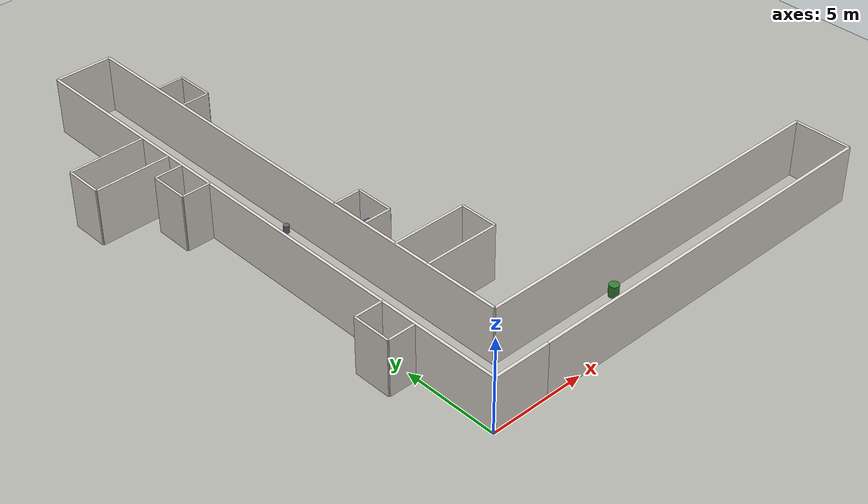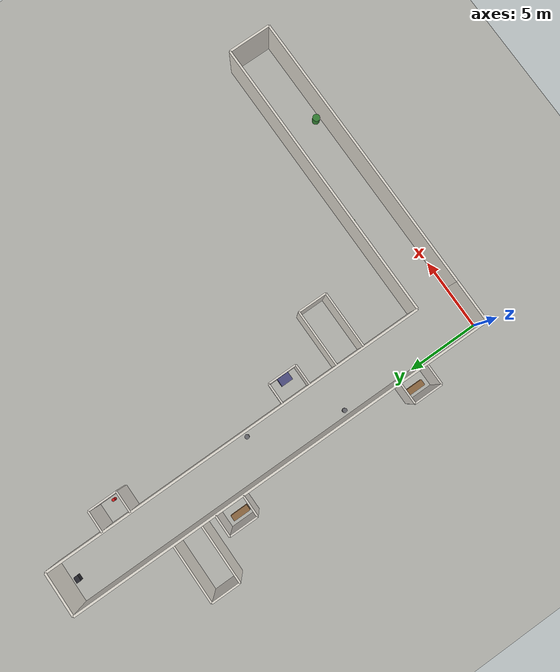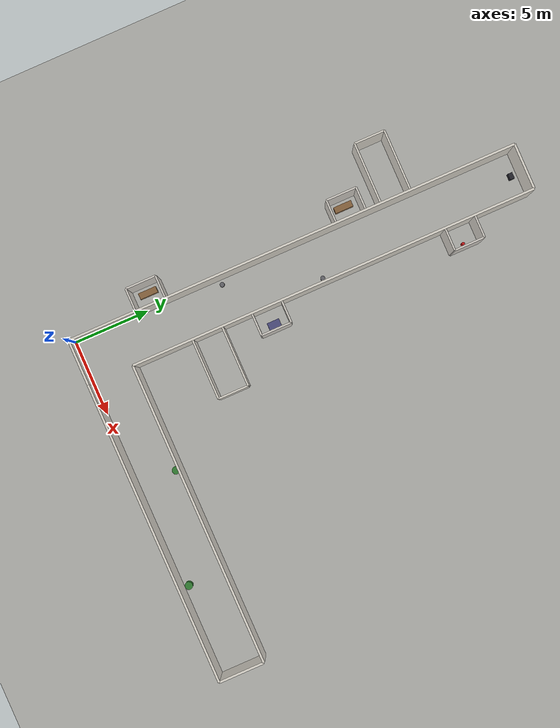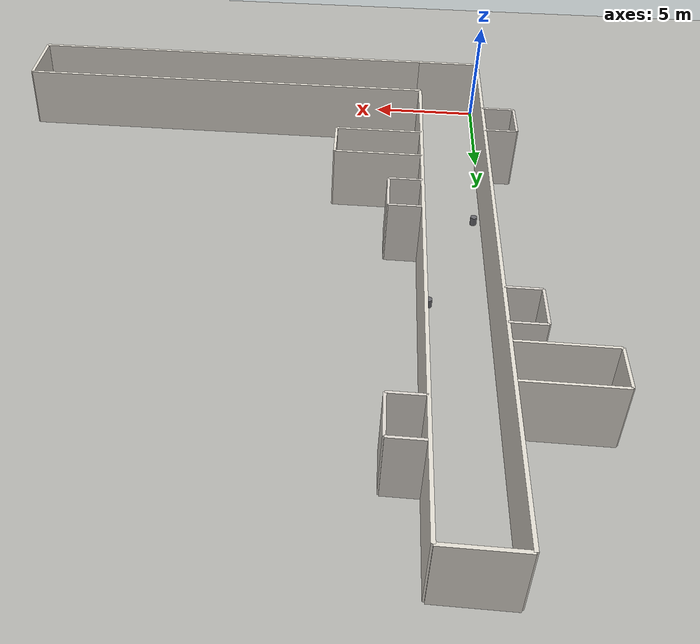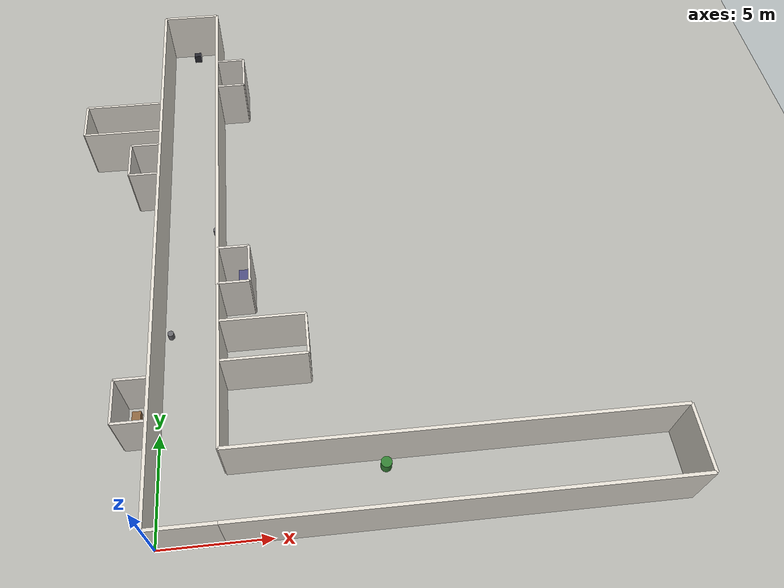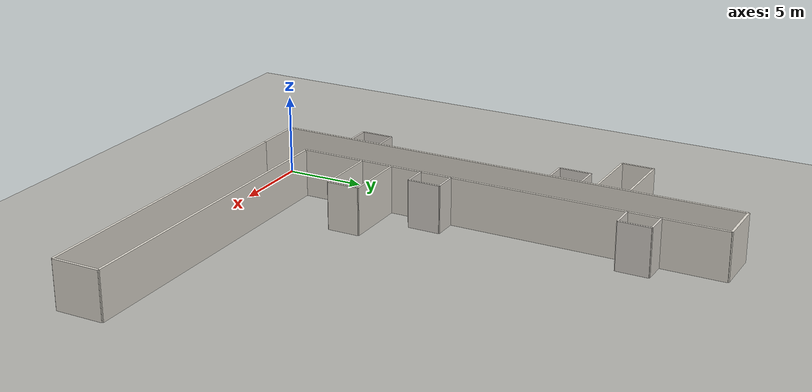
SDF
<?xml version="1.0" ?>
<!-- SPDX-License-Identifier: Apache-2.0 -->
<!-- L-shaped corridor for navigation testing.
     ~50m total length: 30m north leg + 20m east leg, 3m wide with alcoves. -->
<sdf version="1.9">
  <world name="corridor">
    <physics name="1ms" type="ignored">
      <max_step_size>0.001</max_step_size>
      <real_time_factor>1.0</real_time_factor>
    </physics>

    <plugin filename="gz-sim-physics-system" name="gz::sim::systems::Physics"/>
    <plugin filename="gz-sim-scene-broadcaster-system" name="gz::sim::systems::SceneBroadcaster"/>
    <plugin filename="gz-sim-sensors-system" name="gz::sim::systems::Sensors">
      <render_engine>ogre</render_engine>
    </plugin>
    <plugin filename="gz-sim-user-commands-system" name="gz::sim::systems::UserCommands"/>

    <light type="directional" name="sun">
      <cast_shadows>true</cast_shadows>
      <pose>0 0 10 0 0 0</pose>
      <diffuse>0.7 0.7 0.7 1</diffuse>
      <specular>0.2 0.2 0.2 1</specular>
      <direction>-0.5 0.1 -0.9</direction>
    </light>

    <!-- Ground plane (large enough for L-shape) -->
    <model name="ground_plane">
      <static>true</static>
      <link name="link">
        <collision name="collision">
          <geometry><plane><normal>0 0 1</normal><size>25 35</size></plane></geometry>
        </collision>
        <visual name="visual">
          <geometry><plane><normal>0 0 1</normal><size>25 35</size></plane></geometry>
          <material>
            <ambient>0.7 0.7 0.68 1</ambient>
            <diffuse>0.7 0.7 0.68 1</diffuse>
          </material>
        </visual>
      </link>
    </model>

    <!-- ═══════════════════════════════════════════════════════
         North leg: 30m long (y=0 to y=30), 3m wide (x=0 to x=3)
         ═══════════════════════════════════════════════════════ -->

    <!-- West wall of north leg (full length) -->
    <model name="north_leg_wall_west">
      <static>true</static>
      <pose>0 15 1.5 0 0 0</pose>
      <link name="link">
        <collision name="collision">
          <geometry><box><size>0.15 30 3.0</size></box></geometry>
        </collision>
        <visual name="visual">
          <geometry><box><size>0.15 30 3.0</size></box></geometry>
          <material><ambient>0.88 0.86 0.82 1</ambient><diffuse>0.88 0.86 0.82 1</diffuse></material>
        </visual>
      </link>
    </model>

    <!-- East wall of north leg (y=3 to y=30, stops at corner) -->
    <model name="north_leg_wall_east">
      <static>true</static>
      <pose>3 16.5 1.5 0 0 0</pose>
      <link name="link">
        <collision name="collision">
          <geometry><box><size>0.15 27 3.0</size></box></geometry>
        </collision>
        <visual name="visual">
          <geometry><box><size>0.15 27 3.0</size></box></geometry>
          <material><ambient>0.88 0.86 0.82 1</ambient><diffuse>0.88 0.86 0.82 1</diffuse></material>
        </visual>
      </link>
    </model>

    <!-- North cap wall (closes the north end) -->
    <model name="north_cap_wall">
      <static>true</static>
      <pose>1.5 30 1.5 0 0 0</pose>
      <link name="link">
        <collision name="collision">
          <geometry><box><size>3 0.15 3.0</size></box></geometry>
        </collision>
        <visual name="visual">
          <geometry><box><size>3 0.15 3.0</size></box></geometry>
          <material><ambient>0.88 0.86 0.82 1</ambient><diffuse>0.88 0.86 0.82 1</diffuse></material>
        </visual>
      </link>
    </model>

    <!-- South cap wall (closes south end of north leg) -->
    <model name="south_cap_wall">
      <static>true</static>
      <pose>1.5 0 1.5 0 0 0</pose>
      <link name="link">
        <collision name="collision">
          <geometry><box><size>3 0.15 3.0</size></box></geometry>
        </collision>
        <visual name="visual">
          <geometry><box><size>3 0.15 3.0</size></box></geometry>
          <material><ambient>0.88 0.86 0.82 1</ambient><diffuse>0.88 0.86 0.82 1</diffuse></material>
        </visual>
      </link>
    </model>

    <!-- South wall of east leg -->
    <model name="east_leg_wall_south">
      <static>true</static>
      <pose>13 0 1.5 0 0 0</pose>
      <link name="link">
        <collision name="collision">
          <geometry><box><size>20 0.15 3.0</size></box></geometry>
        </collision>
        <visual name="visual">
          <geometry><box><size>20 0.15 3.0</size></box></geometry>
          <material><ambient>0.88 0.86 0.82 1</ambient><diffuse>0.88 0.86 0.82 1</diffuse></material>
        </visual>
      </link>
    </model>

    <!-- North wall of east leg -->
    <model name="east_leg_wall_north">
      <static>true</static>
      <pose>13 3 1.5 0 0 0</pose>
      <link name="link">
        <collision name="collision">
          <geometry><box><size>20 0.15 3.0</size></box></geometry>
        </collision>
        <visual name="visual">
          <geometry><box><size>20 0.15 3.0</size></box></geometry>
          <material><ambient>0.88 0.86 0.82 1</ambient><diffuse>0.88 0.86 0.82 1</diffuse></material>
        </visual>
      </link>
    </model>

    <!-- East cap wall (closes east end) -->
    <model name="east_cap_wall">
      <static>true</static>
      <pose>23 1.5 1.5 0 0 0</pose>
      <link name="link">
        <collision name="collision">
          <geometry><box><size>0.15 3 3.0</size></box></geometry>
        </collision>
        <visual name="visual">
          <geometry><box><size>0.15 3 3.0</size></box></geometry>
          <material><ambient>0.88 0.86 0.82 1</ambient><diffuse>0.88 0.86 0.82 1</diffuse></material>
        </visual>
      </link>
    </model>

    <!-- ═══════════════════════════════════════════════════════
         Alcoves (1.5m deep, 2m wide) along the north leg
         ═══════════════════════════════════════════════════════ -->

    <!-- Alcove 1: West side at y=5, opens west (into west wall) -->
    <model name="alcove1_north_wall">
      <static>true</static>
      <pose>-0.75 6.5 1.5 0 0 0</pose>
      <link name="link">
        <collision name="collision">
          <geometry><box><size>1.5 0.12 3.0</size></box></geometry>
        </collision>
        <visual name="visual">
          <geometry><box><size>1.5 0.12 3.0</size></box></geometry>
          <material><ambient>0.85 0.83 0.8 1</ambient><diffuse>0.85 0.83 0.8 1</diffuse></material>
        </visual>
      </link>
    </model>

    <model name="alcove1_south_wall">
      <static>true</static>
      <pose>-0.75 4.5 1.5 0 0 0</pose>
      <link name="link">
        <collision name="collision">
          <geometry><box><size>1.5 0.12 3.0</size></box></geometry>
        </collision>
        <visual name="visual">
          <geometry><box><size>1.5 0.12 3.0</size></box></geometry>
          <material><ambient>0.85 0.83 0.8 1</ambient><diffuse>0.85 0.83 0.8 1</diffuse></material>
        </visual>
      </link>
    </model>

    <model name="alcove1_back_wall">
      <static>true</static>
      <pose>-1.5 5.5 1.5 0 0 0</pose>
      <link name="link">
        <collision name="collision">
          <geometry><box><size>0.12 2 3.0</size></box></geometry>
        </collision>
        <visual name="visual">
          <geometry><box><size>0.12 2 3.0</size></box></geometry>
          <material><ambient>0.85 0.83 0.8 1</ambient><diffuse>0.85 0.83 0.8 1</diffuse></material>
        </visual>
      </link>
    </model>

    <!-- Alcove 2: East side at y=12 -->
    <model name="alcove2_north_wall">
      <static>true</static>
      <pose>3.75 13 1.5 0 0 0</pose>
      <link name="link">
        <collision name="collision">
          <geometry><box><size>1.5 0.12 3.0</size></box></geometry>
        </collision>
        <visual name="visual">
          <geometry><box><size>1.5 0.12 3.0</size></box></geometry>
          <material><ambient>0.85 0.83 0.8 1</ambient><diffuse>0.85 0.83 0.8 1</diffuse></material>
        </visual>
      </link>
    </model>

    <model name="alcove2_south_wall">
      <static>true</static>
      <pose>3.75 11 1.5 0 0 0</pose>
      <link name="link">
        <collision name="collision">
          <geometry><box><size>1.5 0.12 3.0</size></box></geometry>
        </collision>
        <visual name="visual">
          <geometry><box><size>1.5 0.12 3.0</size></box></geometry>
          <material><ambient>0.85 0.83 0.8 1</ambient><diffuse>0.85 0.83 0.8 1</diffuse></material>
        </visual>
      </link>
    </model>

    <model name="alcove2_back_wall">
      <static>true</static>
      <pose>4.5 12 1.5 0 0 0</pose>
      <link name="link">
        <collision name="collision">
          <geometry><box><size>0.12 2 3.0</size></box></geometry>
        </collision>
        <visual name="visual">
          <geometry><box><size>0.12 2 3.0</size></box></geometry>
          <material><ambient>0.85 0.83 0.8 1</ambient><diffuse>0.85 0.83 0.8 1</diffuse></material>
        </visual>
      </link>
    </model>

    <!-- Alcove 3: West side at y=19 -->
    <model name="alcove3_north_wall">
      <static>true</static>
      <pose>-0.75 20 1.5 0 0 0</pose>
      <link name="link">
        <collision name="collision">
          <geometry><box><size>1.5 0.12 3.0</size></box></geometry>
        </collision>
        <visual name="visual">
          <geometry><box><size>1.5 0.12 3.0</size></box></geometry>
          <material><ambient>0.85 0.83 0.8 1</ambient><diffuse>0.85 0.83 0.8 1</diffuse></material>
        </visual>
      </link>
    </model>

    <model name="alcove3_south_wall">
      <static>true</static>
      <pose>-0.75 18 1.5 0 0 0</pose>
      <link name="link">
        <collision name="collision">
          <geometry><box><size>1.5 0.12 3.0</size></box></geometry>
        </collision>
        <visual name="visual">
          <geometry><box><size>1.5 0.12 3.0</size></box></geometry>
          <material><ambient>0.85 0.83 0.8 1</ambient><diffuse>0.85 0.83 0.8 1</diffuse></material>
        </visual>
      </link>
    </model>

    <model name="alcove3_back_wall">
      <static>true</static>
      <pose>-1.5 19 1.5 0 0 0</pose>
      <link name="link">
        <collision name="collision">
          <geometry><box><size>0.12 2 3.0</size></box></geometry>
        </collision>
        <visual name="visual">
          <geometry><box><size>0.12 2 3.0</size></box></geometry>
          <material><ambient>0.85 0.83 0.8 1</ambient><diffuse>0.85 0.83 0.8 1</diffuse></material>
        </visual>
      </link>
    </model>

    <!-- Alcove 4: East side at y=25 -->
    <model name="alcove4_north_wall">
      <static>true</static>
      <pose>3.75 26 1.5 0 0 0</pose>
      <link name="link">
        <collision name="collision">
          <geometry><box><size>1.5 0.12 3.0</size></box></geometry>
        </collision>
        <visual name="visual">
          <geometry><box><size>1.5 0.12 3.0</size></box></geometry>
          <material><ambient>0.85 0.83 0.8 1</ambient><diffuse>0.85 0.83 0.8 1</diffuse></material>
        </visual>
      </link>
    </model>

    <model name="alcove4_south_wall">
      <static>true</static>
      <pose>3.75 24 1.5 0 0 0</pose>
      <link name="link">
        <collision name="collision">
          <geometry><box><size>1.5 0.12 3.0</size></box></geometry>
        </collision>
        <visual name="visual">
          <geometry><box><size>1.5 0.12 3.0</size></box></geometry>
          <material><ambient>0.85 0.83 0.8 1</ambient><diffuse>0.85 0.83 0.8 1</diffuse></material>
        </visual>
      </link>
    </model>

    <model name="alcove4_back_wall">
      <static>true</static>
      <pose>4.5 25 1.5 0 0 0</pose>
      <link name="link">
        <collision name="collision">
          <geometry><box><size>0.12 2 3.0</size></box></geometry>
        </collision>
        <visual name="visual">
          <geometry><box><size>0.12 2 3.0</size></box></geometry>
          <material><ambient>0.85 0.83 0.8 1</ambient><diffuse>0.85 0.83 0.8 1</diffuse></material>
        </visual>
      </link>
    </model>

    <!-- ═══════════════════════════════════════════════════════
         Intersecting passages (side corridors off north leg)
         ═══════════════════════════════════════════════════════ -->

    <!-- Intersection 1: at y=8, opens east, 2m wide, 4m deep -->
    <model name="intersection1_north_wall">
      <static>true</static>
      <pose>5 9 1.5 0 0 0</pose>
      <link name="link">
        <collision name="collision">
          <geometry><box><size>4 0.12 3.0</size></box></geometry>
        </collision>
        <visual name="visual">
          <geometry><box><size>4 0.12 3.0</size></box></geometry>
          <material><ambient>0.88 0.86 0.82 1</ambient><diffuse>0.88 0.86 0.82 1</diffuse></material>
        </visual>
      </link>
    </model>

    <model name="intersection1_south_wall">
      <static>true</static>
      <pose>5 7 1.5 0 0 0</pose>
      <link name="link">
        <collision name="collision">
          <geometry><box><size>4 0.12 3.0</size></box></geometry>
        </collision>
        <visual name="visual">
          <geometry><box><size>4 0.12 3.0</size></box></geometry>
          <material><ambient>0.88 0.86 0.82 1</ambient><diffuse>0.88 0.86 0.82 1</diffuse></material>
        </visual>
      </link>
    </model>

    <model name="intersection1_end_wall">
      <static>true</static>
      <pose>7 8 1.5 0 0 0</pose>
      <link name="link">
        <collision name="collision">
          <geometry><box><size>0.12 2 3.0</size></box></geometry>
        </collision>
        <visual name="visual">
          <geometry><box><size>0.12 2 3.0</size></box></geometry>
          <material><ambient>0.88 0.86 0.82 1</ambient><diffuse>0.88 0.86 0.82 1</diffuse></material>
        </visual>
      </link>
    </model>

    <!-- Intersection 2: at y=22, opens west, 2m wide, 4m deep -->
    <model name="intersection2_north_wall">
      <static>true</static>
      <pose>-2 23 1.5 0 0 0</pose>
      <link name="link">
        <collision name="collision">
          <geometry><box><size>4 0.12 3.0</size></box></geometry>
        </collision>
        <visual name="visual">
          <geometry><box><size>4 0.12 3.0</size></box></geometry>
          <material><ambient>0.88 0.86 0.82 1</ambient><diffuse>0.88 0.86 0.82 1</diffuse></material>
        </visual>
      </link>
    </model>

    <model name="intersection2_south_wall">
      <static>true</static>
      <pose>-2 21 1.5 0 0 0</pose>
      <link name="link">
        <collision name="collision">
          <geometry><box><size>4 0.12 3.0</size></box></geometry>
        </collision>
        <visual name="visual">
          <geometry><box><size>4 0.12 3.0</size></box></geometry>
          <material><ambient>0.88 0.86 0.82 1</ambient><diffuse>0.88 0.86 0.82 1</diffuse></material>
        </visual>
      </link>
    </model>

    <model name="intersection2_end_wall">
      <static>true</static>
      <pose>-4 22 1.5 0 0 0</pose>
      <link name="link">
        <collision name="collision">
          <geometry><box><size>0.12 2 3.0</size></box></geometry>
        </collision>
        <visual name="visual">
          <geometry><box><size>0.12 2 3.0</size></box></geometry>
          <material><ambient>0.88 0.86 0.82 1</ambient><diffuse>0.88 0.86 0.82 1</diffuse></material>
        </visual>
      </link>
    </model>

    <!-- ═══════════════════════════════════════════════════════
         Furniture in alcoves and corridor
         ═══════════════════════════════════════════════════════ -->

    <!-- Bench in alcove 1 -->
    <model name="bench_1">
      <static>true</static>
      <pose>-1 5.5 0.225 0 0 1.5708</pose>
      <link name="link">
        <collision name="collision">
          <geometry><box><size>1.2 0.4 0.45</size></box></geometry>
        </collision>
        <visual name="visual">
          <geometry><box><size>1.2 0.4 0.45</size></box></geometry>
          <material><ambient>0.55 0.4 0.25 1</ambient><diffuse>0.55 0.4 0.25 1</diffuse></material>
        </visual>
      </link>
    </model>

    <!-- Vending machine in alcove 2 -->
    <model name="vending_machine">
      <static>true</static>
      <pose>4.2 12 0.9 0 0 -1.5708</pose>
      <link name="link">
        <collision name="collision">
          <geometry><box><size>0.8 0.6 1.8</size></box></geometry>
        </collision>
        <visual name="visual">
          <geometry><box><size>0.8 0.6 1.8</size></box></geometry>
          <material><ambient>0.3 0.3 0.5 1</ambient><diffuse>0.3 0.3 0.5 1</diffuse></material>
        </visual>
      </link>
    </model>

    <!-- Bench in alcove 3 -->
    <model name="bench_2">
      <static>true</static>
      <pose>-1 19 0.225 0 0 1.5708</pose>
      <link name="link">
        <collision name="collision">
          <geometry><box><size>1.2 0.4 0.45</size></box></geometry>
        </collision>
        <visual name="visual">
          <geometry><box><size>1.2 0.4 0.45</size></box></geometry>
          <material><ambient>0.55 0.4 0.25 1</ambient><diffuse>0.55 0.4 0.25 1</diffuse></material>
        </visual>
      </link>
    </model>

    <!-- Fire extinguisher (alcove 4) -->
    <model name="fire_extinguisher">
      <static>true</static>
      <pose>4.2 25 0.3 0 0 0</pose>
      <link name="link">
        <collision name="collision">
          <geometry><cylinder><radius>0.1</radius><length>0.6</length></cylinder></geometry>
        </collision>
        <visual name="visual">
          <geometry><cylinder><radius>0.1</radius><length>0.6</length></cylinder></geometry>
          <material><ambient>0.8 0.1 0.1 1</ambient><diffuse>0.8 0.1 0.1 1</diffuse></material>
        </visual>
      </link>
    </model>

    <!-- Trash bins along corridor -->
    <model name="trash_bin_1">
      <static>false</static>
      <pose>0.4 10 0.2 0 0 0</pose>
      <link name="link">
        <inertial>
          <mass>2.0</mass>
          <inertia><ixx>0.02</ixx><iyy>0.02</iyy><izz>0.01</izz></inertia>
        </inertial>
        <collision name="collision">
          <geometry><cylinder><radius>0.15</radius><length>0.4</length></cylinder></geometry>
        </collision>
        <visual name="visual">
          <geometry><cylinder><radius>0.15</radius><length>0.4</length></cylinder></geometry>
          <material><ambient>0.4 0.4 0.42 1</ambient><diffuse>0.4 0.4 0.42 1</diffuse></material>
        </visual>
      </link>
    </model>

    <model name="trash_bin_2">
      <static>false</static>
      <pose>2.6 16 0.2 0 0 0</pose>
      <link name="link">
        <inertial>
          <mass>2.0</mass>
          <inertia><ixx>0.02</ixx><iyy>0.02</iyy><izz>0.01</izz></inertia>
        </inertial>
        <collision name="collision">
          <geometry><cylinder><radius>0.15</radius><length>0.4</length></cylinder></geometry>
        </collision>
        <visual name="visual">
          <geometry><cylinder><radius>0.15</radius><length>0.4</length></cylinder></geometry>
          <material><ambient>0.4 0.4 0.42 1</ambient><diffuse>0.4 0.4 0.42 1</diffuse></material>
        </visual>
      </link>
    </model>

    <!-- Planter (east leg corridor) -->
    <model name="planter_1">
      <static>true</static>
      <pose>10 2.6 0.3 0 0 0</pose>
      <link name="link">
        <collision name="collision">
          <geometry><cylinder><radius>0.25</radius><length>0.6</length></cylinder></geometry>
        </collision>
        <visual name="visual">
          <geometry><cylinder><radius>0.25</radius><length>0.6</length></cylinder></geometry>
          <material><ambient>0.2 0.5 0.2 1</ambient><diffuse>0.2 0.5 0.2 1</diffuse></material>
        </visual>
      </link>
    </model>

    <model name="planter_2">
      <static>true</static>
      <pose>17 0.4 0.3 0 0 0</pose>
      <link name="link">
        <collision name="collision">
          <geometry><cylinder><radius>0.25</radius><length>0.6</length></cylinder></geometry>
        </collision>
        <visual name="visual">
          <geometry><cylinder><radius>0.25</radius><length>0.6</length></cylinder></geometry>
          <material><ambient>0.2 0.5 0.2 1</ambient><diffuse>0.2 0.5 0.2 1</diffuse></material>
        </visual>
      </link>
    </model>

    <!-- Charging dock (north end of corridor) -->
    <include>
      <uri>model://charging_dock</uri>
      <name>charging_dock_1</name>
      <pose>1.5 29.5 0 0 0 3.14159</pose>
    </include>

  </world>
</sdf>

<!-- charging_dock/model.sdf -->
<!-- SPDX-License-Identifier: Apache-2.0 -->
<sdf version="1.9">
  <model name="charging_dock">
    <static>true</static>

    <!-- Dock body -->
    <link name="dock_body">
      <pose>0 0 0.25 0 0 0</pose>
      <collision name="collision">
        <geometry><box><size>0.4 0.3 0.5</size></box></geometry>
      </collision>
      <visual name="body_visual">
        <geometry><box><size>0.4 0.3 0.5</size></box></geometry>
        <material>
          <ambient>0.15 0.15 0.18 1</ambient>
          <diffuse>0.15 0.15 0.18 1</diffuse>
          <specular>0.3 0.3 0.3 1</specular>
        </material>
      </visual>
    </link>

    <!-- AprilTag marker face (front-facing, z=0.35m height) -->
    <link name="apriltag_marker">
      <pose>0 -0.151 0.35 0 0 0</pose>
      <visual name="tag_visual">
        <geometry><box><size>0.16 0.001 0.16</size></box></geometry>
        <material>
          <ambient>1.0 1.0 1.0 1</ambient>
          <diffuse>1.0 1.0 1.0 1</diffuse>
        </material>
      </visual>
    </link>

    <!-- AprilTag black border (slightly larger) -->
    <link name="apriltag_border">
      <pose>0 -0.1505 0.35 0 0 0</pose>
      <visual name="border_visual">
        <geometry><box><size>0.20 0.001 0.20</size></box></geometry>
        <material>
          <ambient>0.0 0.0 0.0 1</ambient>
          <diffuse>0.0 0.0 0.0 1</diffuse>
        </material>
      </visual>
    </link>

    <!-- Pogo pin contact plate (bottom front) -->
    <link name="contact_plate">
      <pose>0 -0.14 0.06 0 0 0</pose>
      <collision name="collision">
        <geometry><box><size>0.12 0.02 0.08</size></box></geometry>
      </collision>
      <visual name="contact_visual">
        <geometry><box><size>0.12 0.02 0.08</size></box></geometry>
        <material>
          <ambient>0.8 0.7 0.2 1</ambient>
          <diffuse>0.8 0.7 0.2 1</diffuse>
          <specular>0.9 0.9 0.5 1</specular>
        </material>
      </visual>
    </link>

    <!-- LED indicator left (green) -->
    <link name="led_green">
      <pose>-0.15 -0.151 0.46 0 0 0</pose>
      <visual name="led_visual">
        <geometry><sphere><radius>0.01</radius></sphere></geometry>
        <material>
          <ambient>0.0 0.8 0.0 1</ambient>
          <diffuse>0.0 1.0 0.0 1</diffuse>
          <emissive>0.0 0.6 0.0 1</emissive>
        </material>
      </visual>
    </link>

    <!-- LED indicator right (red) -->
    <link name="led_red">
      <pose>0.15 -0.151 0.46 0 0 0</pose>
      <visual name="led_visual">
        <geometry><sphere><radius>0.01</radius></sphere></geometry>
        <material>
          <ambient>0.8 0.0 0.0 1</ambient>
          <diffuse>1.0 0.0 0.0 1</diffuse>
          <emissive>0.6 0.0 0.0 1</emissive>
        </material>
      </visual>
    </link>

    <!-- Guide rails for alignment -->
    <link name="guide_left">
      <pose>-0.18 -0.10 0.05 0 0 0</pose>
      <collision name="collision">
        <geometry><box><size>0.02 0.20 0.10</size></box></geometry>
      </collision>
      <visual name="visual">
        <geometry><box><size>0.02 0.20 0.10</size></box></geometry>
        <material>
          <ambient>0.3 0.3 0.35 1</ambient>
          <diffuse>0.3 0.3 0.35 1</diffuse>
        </material>
      </visual>
    </link>

    <link name="guide_right">
      <pose>0.18 -0.10 0.05 0 0 0</pose>
      <collision name="collision">
        <geometry><box><size>0.02 0.20 0.10</size></box></geometry>
      </collision>
      <visual name="visual">
        <geometry><box><size>0.02 0.20 0.10</size></box></geometry>
        <material>
          <ambient>0.3 0.3 0.35 1</ambient>
          <diffuse>0.3 0.3 0.35 1</diffuse>
        </material>
      </visual>
    </link>

    <!-- Fixed joints to connect all links -->
    <joint name="tag_joint" type="fixed">
      <parent>dock_body</parent>
      <child>apriltag_marker</child>
    </joint>
    <joint name="border_joint" type="fixed">
      <parent>dock_body</parent>
      <child>apriltag_border</child>
    </joint>
    <joint name="contact_joint" type="fixed">
      <parent>dock_body</parent>
      <child>contact_plate</child>
    </joint>
    <joint name="led_green_joint" type="fixed">
      <parent>dock_body</parent>
      <child>led_green</child>
    </joint>
    <joint name="led_red_joint" type="fixed">
      <parent>dock_body</parent>
      <child>led_red</child>
    </joint>
    <joint name="guide_left_joint" type="fixed">
      <parent>dock_body</parent>
      <child>guide_left</child>
    </joint>
    <joint name="guide_right_joint" type="fixed">
      <parent>dock_body</parent>
      <child>guide_right</child>
    </joint>
  </model>
</sdf>
